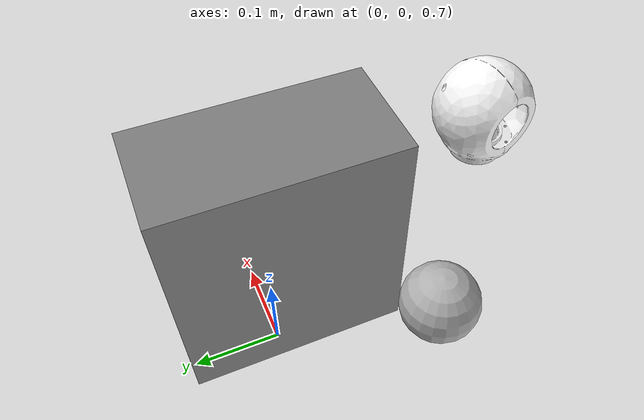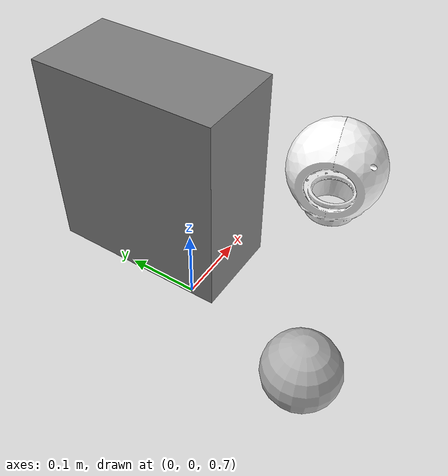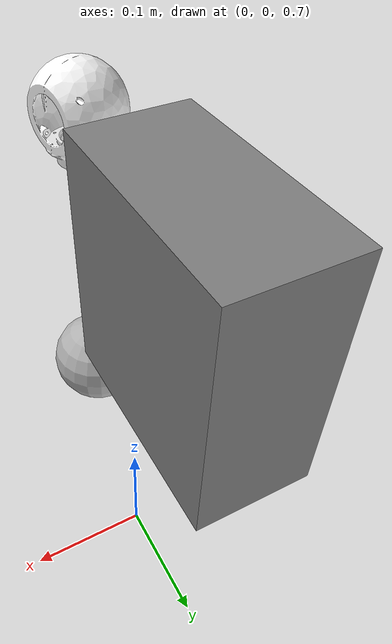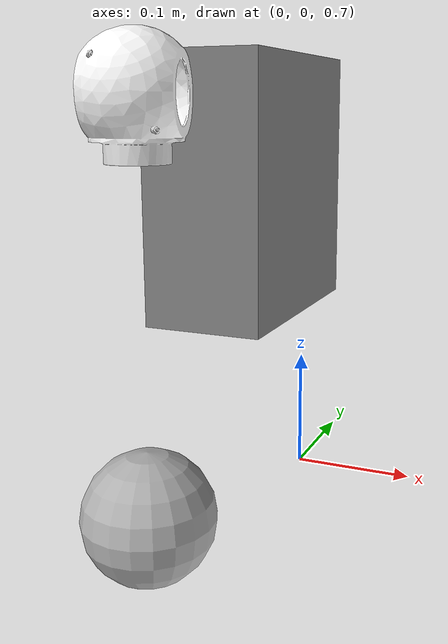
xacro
<?xml version="1.0" ?>
<robot xmlns:xacro="http://www.ros.org/wiki/xacro" name="test_orbita2d">

  <xacro:arg name="use_fake_hardware" default="false"/>
  <xacro:arg name="use_gazebo" default="false"/>

  <xacro:include filename="$(find pollen_generic_description)/urdf/inertial_primitives.urdf.xacro"/>
  <xacro:include filename="$(find orbita2d_description)/urdf/orbita2d.urdf.xacro"/>

  <!-- Orbita2d config -->
  <xacro:arg name="config_file" default="$(find orbita2d_description)/config/fake.yaml"/>

  <!-- MODEL PARAMETERS -->
  <xacro:property name="base_collision" value="true"/>
  <xacro:property name="base_visual" value="true"/>
  <xacro:property name="damping" value="0.1"/>
  <xacro:property name="friction" value="0.1"/>

  <xacro:property name="arm_length" value="0.28"/>
  <xacro:property name="arm_radius" value="0.03"/>
  <xacro:property name="arm_mass" value="0.5"/>
  <xacro:property name="arm_offset_x" value="-0.0479"/>
  <xacro:property name="arm_offset_y" value="-0.1913"/>
  <xacro:property name="arm_offset_z" value="0.025"/>
  <xacro:property name="arm_offset_yaw" value="0.2617993877991494"/> <!-- 15 degrees -->

  <xacro:property name="reflect" value="1"/>

  <!-- MODEL PARAMETERS -->

    <material name="torsoblack">
        <color rgba="0.5 0.5 0.5 1.0"/>
    </material>

  <link name="world"/>
  <joint name="world_joint" type="fixed">
    <origin xyz="0 0 1.0" rpy="0 0 0"/>
    <parent link="world"/>
    <child link="torso"/>
  </joint>

  <!-- TORSO -->
  <link name="torso">
    <xacro:if value="${base_collision}">
      <collision>
        <origin xyz="0 0 -0.5" rpy="0 0 0"/>
        <geometry>
          <cylinder length="1" radius="0.03"/>
        </geometry>
      </collision>
    </xacro:if>
    <xacro:if value="${base_visual}">
      <visual>
        <origin xyz="-0.05 0 -0.05" rpy="0 0.0 0"/>
        <geometry>
          <box size="0.1 0.2 0.22"/>
        </geometry>
        <material name="torsoblack"/>
      </visual>
    </xacro:if>
    <xacro:inertial_cuboid mass="10" xyz="0 0 0.5"  rpy="0 0 0" x_length="0.05" y_length="0.05" z_length="1"/>
  </link>
  <gazebo reference="torso">
    <material>Gazebo/Black</material>
    <static>true</static>
  </gazebo>
  <!-- TORSO -->

  <!-- Shoulder style Orbita2d -->
  <xacro:orbita2d
    name="shoulder" parent="torso"
    length="${arm_length}" radius="${arm_radius}" mass="${arm_mass}"
    xyz="${arm_offset_x} ${arm_offset_y*reflect} ${arm_offset_z}" rpy="0 0 ${arm_offset_yaw*reflect}"
    damping="${damping}" friction="${friction}"
    joint1="pitch" joint2="roll"
    joint1_min_angle="-${pi/2}" joint1_max_angle="${pi/2}"
    joint2_min_angle="-${pi/2}" joint2_max_angle="0.0"
    config_file="$(arg config_file)"
  />

  <link name="tip">
    <visual>
      <origin xyz="0 0 0" rpy="0 0.0 0"/>
      <geometry>
          <sphere radius="0.05"/>
      </geometry>
    </visual>
  </link>
  <joint name="tip_joint" type="fixed">
    <origin xyz="0 0 -0.3" rpy="0 0 0"/>
    <parent link="shoulder_ball_link"/>
    <child link="tip"/>
  </joint>

</robot>

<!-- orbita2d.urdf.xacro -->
<robot xmlns:xacro="http://www.ros.org/wiki/xacro">

  <xacro:include filename="$(find pollen_generic_description)/urdf/inertial_primitives.urdf.xacro"/>
  <xacro:include filename="$(find pollen_generic_description)/urdf/materials.urdf.xacro"/>

  <xacro:macro name="joint2axis" params="joint">
    <xacro:if value="${joint == 'roll'}">
      <axis xyz="1 0 0"/>
    </xacro:if>
    <xacro:if value="${joint == 'pitch'}">
      <axis xyz="0 1 0"/>
    </xacro:if>
    <xacro:if value="${joint == 'yaw'}">
      <axis xyz="0 0 1"/>
    </xacro:if>
  </xacro:macro>

  <xacro:macro name="orbita2d" params="name parent length radius mass xyz rpy damping friction joint1 joint2 joint1_min_angle joint1_max_angle joint2_min_angle joint2_max_angle config_file">

    <!-- used to "place" the joint with the correct axis. For some reason rotation of the inertia matrix does not work... -->
    <link name="${name}_dummy_link1">
      <inertial>
        <origin xyz="0.0 0.0 0.0" rpy="0.0 0.0 0.0"/>
        <mass value="0.001"/>
        <inertia ixx="1.0e-6" ixy="1.0e-8" ixz="1.0e-8" iyy="1.0e-6" iyz="1.0e-8" izz="1.0e-6"/>
      </inertial>
    </link>

    <joint name="${name}_dummy_1" type="fixed">
      <origin xyz="${xyz}" rpy="${rpy}"/>
      <parent link="${parent}"/>
      <child link="${name}_dummy_link1"/>
    </joint>

    <link name="${name}_dummy_link2">
      <inertial>
        <origin xyz="0.0 0.0 0.0" rpy="0.0 0.0 0.0"/>
        <mass value="0.001"/>
        <inertia ixx="1.0e-6" ixy="1.0e-8" ixz="1.0e-8" iyy="1.0e-6" iyz="1.0e-8" izz="1.0e-6"/>
      </inertial>
    </link>

    <!-- used to rotatate the joint to respect the conventional axis -->
    <joint name="${name}_dummy_2" type="fixed">
    <xacro:if value="${name == 'r_shoulder'}">
      <origin xyz="0 0 0" rpy="-1.5707963267948966 0 0"/>
    </xacro:if>
    <xacro:if value="${name == 'l_shoulder'}">
      <origin xyz="0 0 0" rpy="1.5707963267948966 0 0"/>
    </xacro:if>
    <xacro:if value="${name == 'r_elbow'}">
      <origin xyz="0 0 0" rpy="3.141592 0 1.5707963267948966"/>
    </xacro:if>
    <xacro:if value="${name == 'l_elbow'}">
      <origin xyz="0 0 0" rpy="3.141592 0 -1.5707963267948966"/>
    </xacro:if>

      <parent link="${name}_dummy_link1"/>
      <child link="${name}_dummy_link2"/>
    </joint>

    <link name="${name}_first_link">
      <visual>
    <xacro:if value="${name == 'r_shoulder'}">
      <origin xyz="0 0 0" rpy="1.5707963267948966 0 0"/>
    </xacro:if>
    <xacro:if value="${name == 'l_shoulder'}">
      <origin xyz="0 0 0" rpy="-1.5707963267948966 0 0"/>
    </xacro:if>
    <xacro:if value="${name == 'r_elbow'}">
      <origin xyz="0 0 0" rpy="3.141592 0 -1.5707963267948966"/>
    </xacro:if>
    <xacro:if value="${name == 'l_elbow'}">
      <origin xyz="0 0 0" rpy="3.141592 0 1.5707963267948966"/>
    </xacro:if>

      	<geometry>
	  <mesh filename="file://$(find orbita2d_description)/meshes/2D_sphere_visual.dae" />
      	</geometry>

      </visual>

      <inertial>
      	<!-- rotation does not work? -->
      	<origin xyz="0.000096 -0.000015 -0.01777" rpy="0 0 0"/>
	<mass value="0.487"/>
	 <inertia ixx="0.000577881945" ixy="-8.085000000000001e-7" ixz="-6.962790000000001e-7"
		  iyx="-8.085000000000001e-7" iyy="0.000573075516" iyz="2.44386e-7"
		  izx="-6.962790000000001e-7" izy="2.44386e-7" izz="0.000243343676"/>
      </inertial>

    </link>

    <!-- First joint  -->
    <joint name="${name}_${joint1}" type="revolute">
      <origin xyz="0 0 0" rpy="0 0 0"/>
      <parent link="${name}_dummy_link2"/>
      <child link="${name}_first_link"/>
      <!-- axis1 -->
      <xacro:joint2axis joint="${joint1}"/>

      <limit lower="${joint1_min_angle}" upper="${joint1_max_angle}" effort="1000.0" velocity="100.0"/>
      <safety_controller k_velocity="500" k_position="500" soft_lower_limit="-3.141592" soft_upper_limit="3.1415" />
      <dynamics damping="${damping}" friction="${friction}"/>
    </joint>

    <!-- Output link -->
    <link name="${name}_ball_link">
      <inertial>
        <origin xyz="0.0 0.0 0.0" rpy="0.0 0.0 0.0"/>
        <mass value="0.001"/>
        <inertia ixx="1.0e-6" ixy="1.0e-8" ixz="1.0e-8" iyy="1.0e-6" iyz="1.0e-8" izz="1.0e-6"/>
      </inertial>
    </link>

    <joint name="${name}_${joint2}" type="revolute">
      <origin xyz="0 0 0" rpy=" 0 0 0"/>
      <parent link="${name}_first_link"/>
      <child link="${name}_ball_link"/>
      <!-- axis2 -->
      <xacro:joint2axis joint="${joint2}"/>

      <limit lower="${joint2_min_angle}" upper="${joint2_max_angle}" effort="1000.0" velocity="100.0"/>
      <safety_controller k_velocity="500" k_position="500" soft_lower_limit="-3.1415" soft_upper_limit="3.1415" />
      <dynamics damping="${damping}" friction="${friction}"/>
    </joint>

    <link name="${name}_fix_link">
      <inertial>
        <origin xyz="0.0 0.0 0.0" rpy="0.0 0.0 0.0"/>
        <mass value="0.001"/>
        <inertia ixx="1.0e-6" ixy="1.0e-8" ixz="1.0e-8" iyy="1.0e-6" iyz="1.0e-8" izz="1.0e-6"/>
      </inertial>
    </link>

    <!-- used to rotate the joint to respect the conventional axis -->
    <joint name="${name}_dummy_out" type="fixed">
    <xacro:if value="${name == 'r_shoulder'}">
      <origin xyz="0 0 0" rpy="1.5707963267948966 0 0"/>
    </xacro:if>
    <xacro:if value="${name == 'l_shoulder'}">
      <origin xyz="0 0 0" rpy="1.5707963267948966 0 0"/>
    </xacro:if>
    <xacro:if value="${name == 'r_elbow'}">
      <origin xyz="0 0 0" rpy="3.141592 0 1.5707963267948966"/>
    </xacro:if>
    <xacro:if value="${name == 'l_elbow'}">
      <origin xyz="0 0 0" rpy="3.141592 0 1.5707963267948966"/>
    </xacro:if>

      <parent link="${name}_ball_link"/>
      <child link="${name}_fix_link"/>
    </joint>

    <xacro:orbita2d_control
      name="${name}"
      joint1="${joint1}" joint2="${joint2}"
      config_file="${config_file}"
    />

  </xacro:macro>
</robot>
